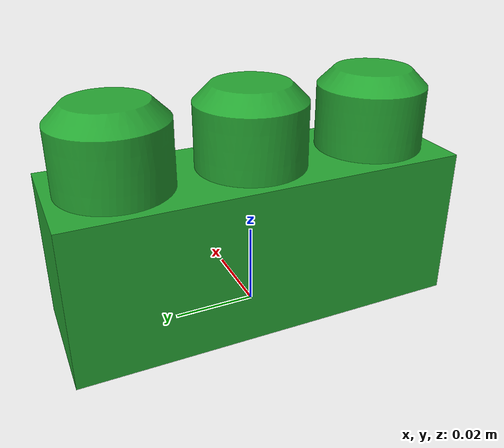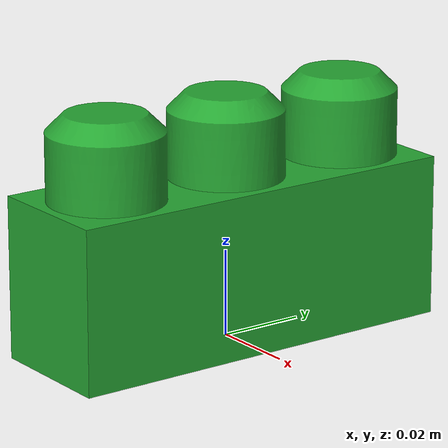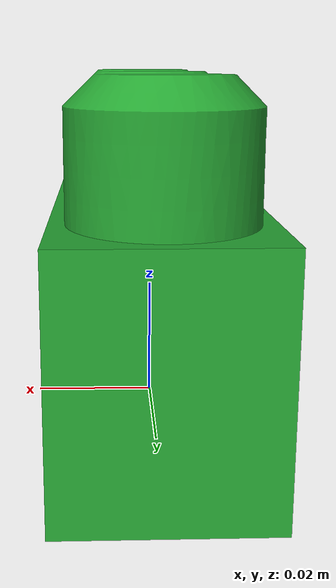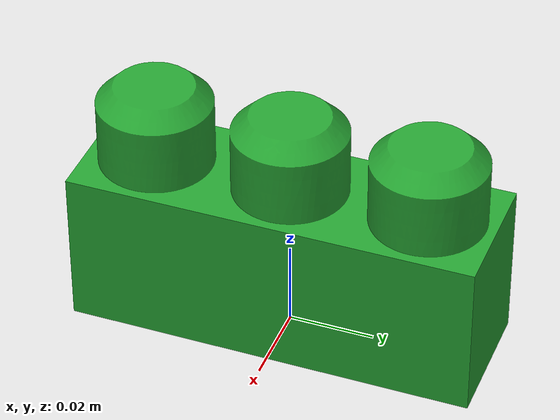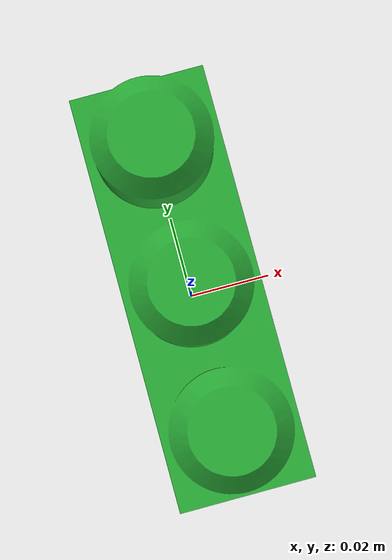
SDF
<?xml version='1.0'?>
<sdf version="1.6">

         <model name="mesh_X1-Y3-Z2">
             <static>0</static>
             <self_collide>0</self_collide>
             <allow_auto_disable>1</allow_auto_disable>

             <pose>0 0 0 0 -0 0</pose>

             <link name="link">

                 <gravity>1</gravity>
                 <self_collide>0</self_collide>
                 <kinematic>0</kinematic>

                 <inertial>
                    <!-- Volume:  2.1262192000e-05 -->
                    <mass>0.001</mass>

                    <!-- Center of mass:  4.0000000000e-08 -3.0000000000e-08  2.9132590000e-02 -->
                    <pose>0 0 -0.064e-02 0 0 0</pose>

                    <!-- Inertia matrix -->
                    <inertia>
                        <ixx>0</ixx>
                        <ixy>0</ixy>
                        <ixz>0</ixz>
                        <iyy>0</iyy>
                        <iyz>0</iyz>
                        <izz>0</izz>
                    </inertia>
                </inertial>

                 <collision name="collision">
                     <!--
                         Maximum number of contacts allowed between two entities.
                         This value overrides the max_contacts element defined in physics.
                     -->
                     <max_contacts>20</max_contacts>

                     <pose>0 0 0 0 -0 0</pose>

                     <geometry>
                         <mesh>
                             <uri>model://X1-Y3-Z2/mesh/X1-Y3-Z2.stl</uri>
                             <!-- Scaling factor applied to the mesh -->
                             <scale>1.0 1.0 1.0</scale>
                         </mesh>
                     </geometry>
                     <!-- http://sdformat.org/spec?ver=1.6&elem=collision#surface_soft_contact -->
                     <surface>
                        <contact>
                            <ode>
                                <max_vel>0.0</max_vel>
                                <min_depth>0.008</min_depth>
                            </ode>
                        </contact>
                    </surface>
                 </collision>

                 <visual name="visual">
                     <cast_shadows>1</cast_shadows>
                     <transparency>0</transparency>

                    <pose>0 0 0 0 -0 0</pose>

                     <material>

                         <script>
                             <uri>file://media/materials/scripts/gazebo.material</uri>
                             <name>Gazebo/Green</name>
                         </script>
                         <shader type="vertex">
                           <normal_map>__default__</normal_map>
                         </shader>

                         <lighting>1</lighting>
 		                <ambient>0.15 0.75 0.35 1</ambient>
 		                <diffuse>0.1 0.95 0.25 1</diffuse>
 		                <specular>0.01 0.01 0.01 1</specular>
 		                <emissive>0 0 0 1</emissive>
                     </material>

                     <geometry>
                         <mesh>
                             <uri>model://X1-Y3-Z2/mesh/X1-Y3-Z2.stl</uri>
                             <!-- Scaling factor applied to the mesh -->
                             <scale>1.0 1.0 1.0</scale>
                         </mesh>
                     </geometry>
                 </visual>
             </link>
         </model>
     </sdf>
